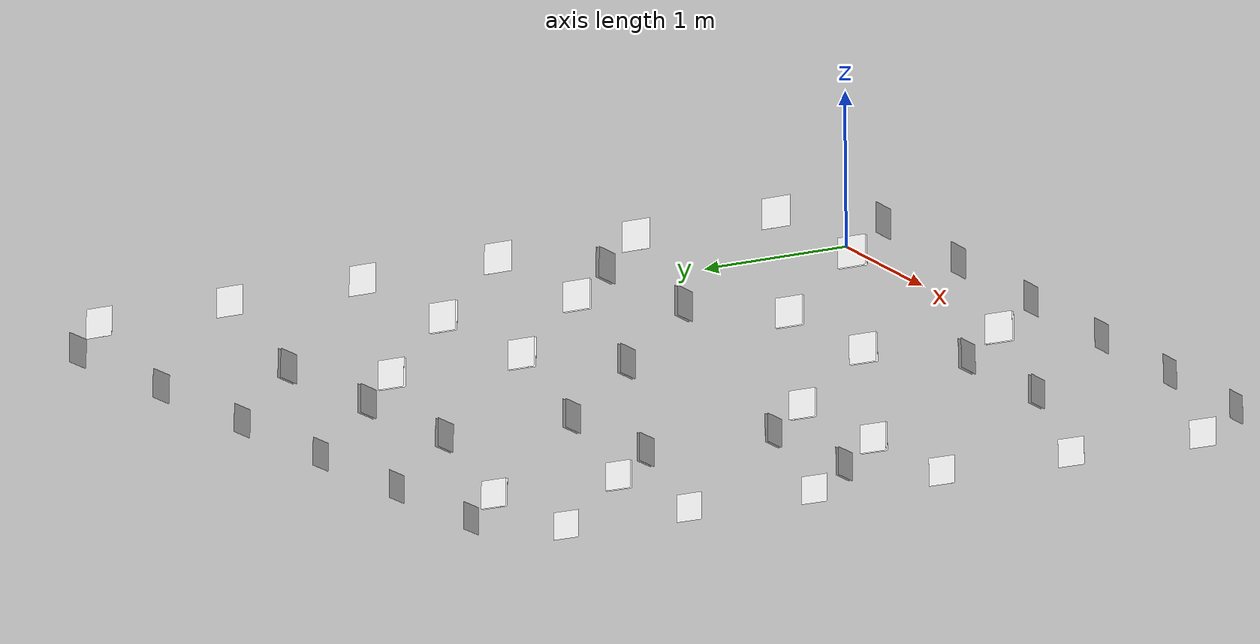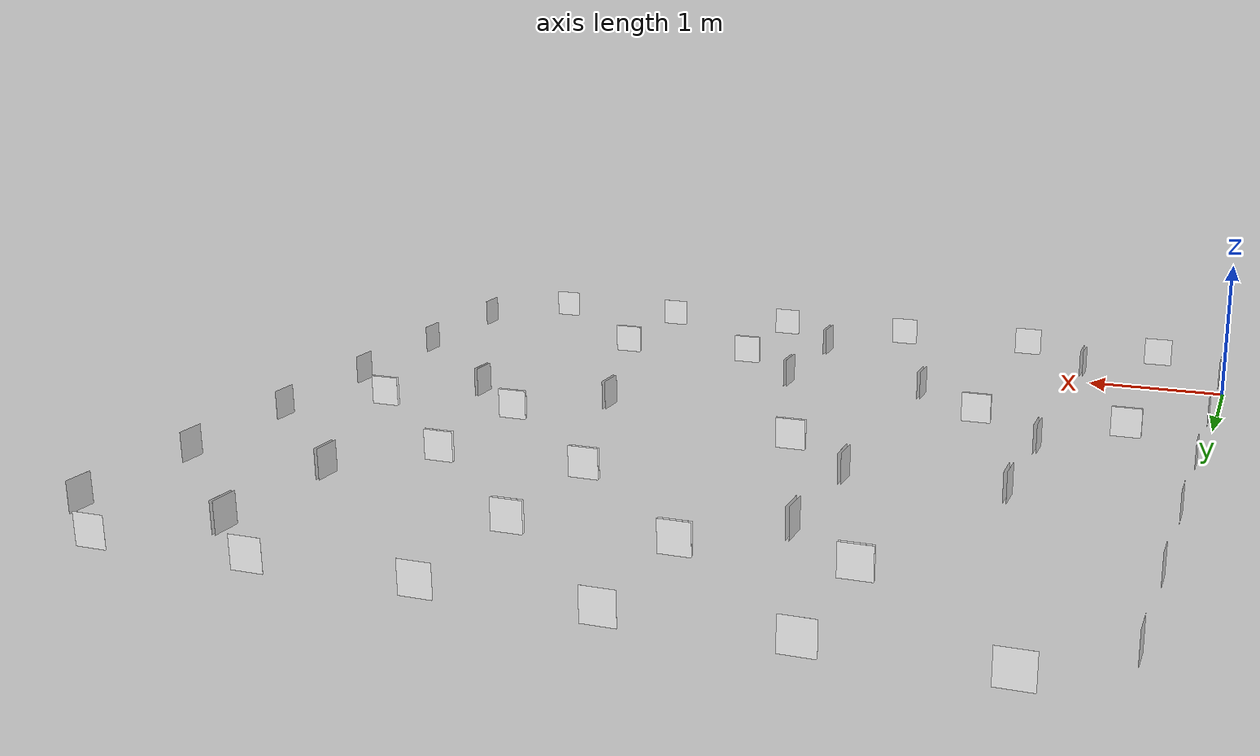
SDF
<?xml version="1.0" ?>
<sdf version="1.5">

 <model name="tag36h11_maze_3">
    <static>true</static>
    <link name='tags'>

     <collision name='collision'>
        <geometry>
          <plane>
            <normal>1 0 0</normal>
            <size>2 2</size>
          </plane>
        </geometry>
        <surface>
          <friction>
            <ode>
              <mu>0.2</mu>
              <mu2>.2</mu2>
            </ode>
          </friction>
        </surface>
     </collision>

      <visual name='tag36_11_00000'>
        <pose>0.5 0.011 0.3 1.5708 0 3.14159</pose>
        <cast_shadows>false</cast_shadows>
        <geometry>
          <plane>
            <normal>0 0 1</normal>
            <size>.2 .2</size>
          </plane>
        </geometry>
        <material>
          <ambient>0.85 0.85 0.85 1</ambient>
          <diffuse>0.85 0.85 0.85 1</diffuse>
          <specular>0.1 0.1 0.1 1</specular>
        </material>
      </visual>

      <visual name='tag36_11_00001'>
        <pose>1.5 0.011 0.3 1.5708 0 3.14159</pose>
        <cast_shadows>false</cast_shadows>
        <geometry>
          <plane>
            <normal>0 0 1</normal>
            <size>.2 .2</size>
          </plane>
        </geometry>
        <material>
          <ambient>0.85 0.85 0.85 1</ambient>
          <diffuse>0.85 0.85 0.85 1</diffuse>
          <specular>0.1 0.1 0.1 1</specular>
        </material>
      </visual>

      <visual name='tag36_11_00002'>
        <pose>2.5 0.011 0.3 1.5708 0 3.14159</pose>
        <cast_shadows>false</cast_shadows>
        <geometry>
          <plane>
            <normal>0 0 1</normal>
            <size>.2 .2</size>
          </plane>
        </geometry>
        <material>
          <ambient>0.85 0.85 0.85 1</ambient>
          <diffuse>0.85 0.85 0.85 1</diffuse>
          <specular>0.1 0.1 0.1 1</specular>
        </material>
      </visual>

      <visual name='tag36_11_00003'>
        <pose>3.5 0.011 0.3 1.5708 0 3.14159</pose>
        <cast_shadows>false</cast_shadows>
        <geometry>
          <plane>
            <normal>0 0 1</normal>
            <size>.2 .2</size>
          </plane>
        </geometry>
        <material>
          <ambient>0.85 0.85 0.85 1</ambient>
          <diffuse>0.85 0.85 0.85 1</diffuse>
          <specular>0.1 0.1 0.1 1</specular>
        </material>
      </visual>

      <visual name='tag36_11_00004'>
        <pose>4.5 0.011 0.3 1.5708 0 3.14159</pose>
        <cast_shadows>false</cast_shadows>
        <geometry>
          <plane>
            <normal>0 0 1</normal>
            <size>.2 .2</size>
          </plane>
        </geometry>
        <material>
          <ambient>0.85 0.85 0.85 1</ambient>
          <diffuse>0.85 0.85 0.85 1</diffuse>
          <specular>0.1 0.1 0.1 1</specular>
        </material>
      </visual>

      <visual name='tag36_11_00005'>
        <pose>5.5 0.011 0.3 1.5708 0 3.14159</pose>
        <cast_shadows>false</cast_shadows>
        <geometry>
          <plane>
            <normal>0 0 1</normal>
            <size>.2 .2</size>
          </plane>
        </geometry>
        <material>
          <ambient>0.85 0.85 0.85 1</ambient>
          <diffuse>0.85 0.85 0.85 1</diffuse>
          <specular>0.1 0.1 0.1 1</specular>
        </material>
      </visual>

      <visual name='tag36_11_00016'>
        <pose>3.5 1.011 0.3 1.5708 0 3.14159</pose>
        <cast_shadows>false</cast_shadows>
        <geometry>
          <plane>
            <normal>0 0 1</normal>
            <size>.2 .2</size>
          </plane>
        </geometry>
        <material>
          <ambient>0.85 0.85 0.85 1</ambient>
          <diffuse>0.85 0.85 0.85 1</diffuse>
          <specular>0.1 0.1 0.1 1</specular>
        </material>
      </visual>

      <visual name='tag36_11_00017'>
        <pose>3.5 0.989 0.3 1.5708 0 0</pose>
        <cast_shadows>false</cast_shadows>
        <geometry>
          <plane>
            <normal>0 0 1</normal>
            <size>.2 .2</size>
          </plane>
        </geometry>
        <material>
          <ambient>0.85 0.85 0.85 1</ambient>
          <diffuse>0.85 0.85 0.85 1</diffuse>
          <specular>0.1 0.1 0.1 1</specular>
        </material>
      </visual>

      <visual name='tag36_11_00018'>
        <pose>4.5 1.011 0.3 1.5708 0 3.14159</pose>
        <cast_shadows>false</cast_shadows>
        <geometry>
          <plane>
            <normal>0 0 1</normal>
            <size>.2 .2</size>
          </plane>
        </geometry>
        <material>
          <ambient>0.85 0.85 0.85 1</ambient>
          <diffuse>0.85 0.85 0.85 1</diffuse>
          <specular>0.1 0.1 0.1 1</specular>
        </material>
      </visual>

      <visual name='tag36_11_00019'>
        <pose>4.5 0.989 0.3 1.5708 0 0</pose>
        <cast_shadows>false</cast_shadows>
        <geometry>
          <plane>
            <normal>0 0 1</normal>
            <size>.2 .2</size>
          </plane>
        </geometry>
        <material>
          <ambient>0.85 0.85 0.85 1</ambient>
          <diffuse>0.85 0.85 0.85 1</diffuse>
          <specular>0.1 0.1 0.1 1</specular>
        </material>
      </visual>

      <visual name='tag36_11_00030'>
        <pose>0.5 2.011 0.3 1.5708 0 3.14159</pose>
        <cast_shadows>false</cast_shadows>
        <geometry>
          <plane>
            <normal>0 0 1</normal>
            <size>.2 .2</size>
          </plane>
        </geometry>
        <material>
          <ambient>0.85 0.85 0.85 1</ambient>
          <diffuse>0.85 0.85 0.85 1</diffuse>
          <specular>0.1 0.1 0.1 1</specular>
        </material>
      </visual>

      <visual name='tag36_11_00031'>
        <pose>0.5 1.989 0.3 1.5708 0 0</pose>
        <cast_shadows>false</cast_shadows>
        <geometry>
          <plane>
            <normal>0 0 1</normal>
            <size>.2 .2</size>
          </plane>
        </geometry>
        <material>
          <ambient>0.85 0.85 0.85 1</ambient>
          <diffuse>0.85 0.85 0.85 1</diffuse>
          <specular>0.1 0.1 0.1 1</specular>
        </material>
      </visual>

      <visual name='tag36_11_00032'>
        <pose>1.5 2.011 0.3 1.5708 0 3.14159</pose>
        <cast_shadows>false</cast_shadows>
        <geometry>
          <plane>
            <normal>0 0 1</normal>
            <size>.2 .2</size>
          </plane>
        </geometry>
        <material>
          <ambient>0.85 0.85 0.85 1</ambient>
          <diffuse>0.85 0.85 0.85 1</diffuse>
          <specular>0.1 0.1 0.1 1</specular>
        </material>
      </visual>

      <visual name='tag36_11_00033'>
        <pose>1.5 1.989 0.3 1.5708 0 0</pose>
        <cast_shadows>false</cast_shadows>
        <geometry>
          <plane>
            <normal>0 0 1</normal>
            <size>.2 .2</size>
          </plane>
        </geometry>
        <material>
          <ambient>0.85 0.85 0.85 1</ambient>
          <diffuse>0.85 0.85 0.85 1</diffuse>
          <specular>0.1 0.1 0.1 1</specular>
        </material>
      </visual>

      <visual name='tag36_11_00054'>
        <pose>2.5 3.011 0.3 1.5708 0 3.14159</pose>
        <cast_shadows>false</cast_shadows>
        <geometry>
          <plane>
            <normal>0 0 1</normal>
            <size>.2 .2</size>
          </plane>
        </geometry>
        <material>
          <ambient>0.85 0.85 0.85 1</ambient>
          <diffuse>0.85 0.85 0.85 1</diffuse>
          <specular>0.1 0.1 0.1 1</specular>
        </material>
      </visual>

      <visual name='tag36_11_00055'>
        <pose>2.5 2.989 0.3 1.5708 0 0</pose>
        <cast_shadows>false</cast_shadows>
        <geometry>
          <plane>
            <normal>0 0 1</normal>
            <size>.2 .2</size>
          </plane>
        </geometry>
        <material>
          <ambient>0.85 0.85 0.85 1</ambient>
          <diffuse>0.85 0.85 0.85 1</diffuse>
          <specular>0.1 0.1 0.1 1</specular>
        </material>
      </visual>

      <visual name='tag36_11_00058'>
        <pose>4.5 3.011 0.3 1.5708 0 3.14159</pose>
        <cast_shadows>false</cast_shadows>
        <geometry>
          <plane>
            <normal>0 0 1</normal>
            <size>.2 .2</size>
          </plane>
        </geometry>
        <material>
          <ambient>0.85 0.85 0.85 1</ambient>
          <diffuse>0.85 0.85 0.85 1</diffuse>
          <specular>0.1 0.1 0.1 1</specular>
        </material>
      </visual>

      <visual name='tag36_11_00059'>
        <pose>4.5 2.989 0.3 1.5708 0 0</pose>
        <cast_shadows>false</cast_shadows>
        <geometry>
          <plane>
            <normal>0 0 1</normal>
            <size>.2 .2</size>
          </plane>
        </geometry>
        <material>
          <ambient>0.85 0.85 0.85 1</ambient>
          <diffuse>0.85 0.85 0.85 1</diffuse>
          <specular>0.1 0.1 0.1 1</specular>
        </material>
      </visual>

      <visual name='tag36_11_00060'>
        <pose>5.5 3.011 0.3 1.5708 0 3.14159</pose>
        <cast_shadows>false</cast_shadows>
        <geometry>
          <plane>
            <normal>0 0 1</normal>
            <size>.2 .2</size>
          </plane>
        </geometry>
        <material>
          <ambient>0.85 0.85 0.85 1</ambient>
          <diffuse>0.85 0.85 0.85 1</diffuse>
          <specular>0.1 0.1 0.1 1</specular>
        </material>
      </visual>

      <visual name='tag36_11_00061'>
        <pose>5.5 2.989 0.3 1.5708 0 0</pose>
        <cast_shadows>false</cast_shadows>
        <geometry>
          <plane>
            <normal>0 0 1</normal>
            <size>.2 .2</size>
          </plane>
        </geometry>
        <material>
          <ambient>0.85 0.85 0.85 1</ambient>
          <diffuse>0.85 0.85 0.85 1</diffuse>
          <specular>0.1 0.1 0.1 1</specular>
        </material>
      </visual>

      <visual name='tag36_11_00076'>
        <pose>3.5 4.011 0.3 1.5708 0 3.14159</pose>
        <cast_shadows>false</cast_shadows>
        <geometry>
          <plane>
            <normal>0 0 1</normal>
            <size>.2 .2</size>
          </plane>
        </geometry>
        <material>
          <ambient>0.85 0.85 0.85 1</ambient>
          <diffuse>0.85 0.85 0.85 1</diffuse>
          <specular>0.1 0.1 0.1 1</specular>
        </material>
      </visual>

      <visual name='tag36_11_00077'>
        <pose>3.5 3.989 0.3 1.5708 0 0</pose>
        <cast_shadows>false</cast_shadows>
        <geometry>
          <plane>
            <normal>0 0 1</normal>
            <size>.2 .2</size>
          </plane>
        </geometry>
        <material>
          <ambient>0.85 0.85 0.85 1</ambient>
          <diffuse>0.85 0.85 0.85 1</diffuse>
          <specular>0.1 0.1 0.1 1</specular>
        </material>
      </visual>

      <visual name='tag36_11_00078'>
        <pose>4.5 4.011 0.3 1.5708 0 3.14159</pose>
        <cast_shadows>false</cast_shadows>
        <geometry>
          <plane>
            <normal>0 0 1</normal>
            <size>.2 .2</size>
          </plane>
        </geometry>
        <material>
          <ambient>0.85 0.85 0.85 1</ambient>
          <diffuse>0.85 0.85 0.85 1</diffuse>
          <specular>0.1 0.1 0.1 1</specular>
        </material>
      </visual>

      <visual name='tag36_11_00079'>
        <pose>4.5 3.989 0.3 1.5708 0 0</pose>
        <cast_shadows>false</cast_shadows>
        <geometry>
          <plane>
            <normal>0 0 1</normal>
            <size>.2 .2</size>
          </plane>
        </geometry>
        <material>
          <ambient>0.85 0.85 0.85 1</ambient>
          <diffuse>0.85 0.85 0.85 1</diffuse>
          <specular>0.1 0.1 0.1 1</specular>
        </material>
      </visual>

      <visual name='tag36_11_00092'>
        <pose>1.5 5.011 0.3 1.5708 0 3.14159</pose>
        <cast_shadows>false</cast_shadows>
        <geometry>
          <plane>
            <normal>0 0 1</normal>
            <size>.2 .2</size>
          </plane>
        </geometry>
        <material>
          <ambient>0.85 0.85 0.85 1</ambient>
          <diffuse>0.85 0.85 0.85 1</diffuse>
          <specular>0.1 0.1 0.1 1</specular>
        </material>
      </visual>

      <visual name='tag36_11_00093'>
        <pose>1.5 4.989 0.3 1.5708 0 0</pose>
        <cast_shadows>false</cast_shadows>
        <geometry>
          <plane>
            <normal>0 0 1</normal>
            <size>.2 .2</size>
          </plane>
        </geometry>
        <material>
          <ambient>0.85 0.85 0.85 1</ambient>
          <diffuse>0.85 0.85 0.85 1</diffuse>
          <specular>0.1 0.1 0.1 1</specular>
        </material>
      </visual>

      <visual name='tag36_11_00094'>
        <pose>2.5 5.011 0.3 1.5708 0 3.14159</pose>
        <cast_shadows>false</cast_shadows>
        <geometry>
          <plane>
            <normal>0 0 1</normal>
            <size>.2 .2</size>
          </plane>
        </geometry>
        <material>
          <ambient>0.85 0.85 0.85 1</ambient>
          <diffuse>0.85 0.85 0.85 1</diffuse>
          <specular>0.1 0.1 0.1 1</specular>
        </material>
      </visual>

      <visual name='tag36_11_00095'>
        <pose>2.5 4.989 0.3 1.5708 0 0</pose>
        <cast_shadows>false</cast_shadows>
        <geometry>
          <plane>
            <normal>0 0 1</normal>
            <size>.2 .2</size>
          </plane>
        </geometry>
        <material>
          <ambient>0.85 0.85 0.85 1</ambient>
          <diffuse>0.85 0.85 0.85 1</diffuse>
          <specular>0.1 0.1 0.1 1</specular>
        </material>
      </visual>

      <visual name='tag36_11_00096'>
        <pose>3.5 5.011 0.3 1.5708 0 3.14159</pose>
        <cast_shadows>false</cast_shadows>
        <geometry>
          <plane>
            <normal>0 0 1</normal>
            <size>.2 .2</size>
          </plane>
        </geometry>
        <material>
          <ambient>0.85 0.85 0.85 1</ambient>
          <diffuse>0.85 0.85 0.85 1</diffuse>
          <specular>0.1 0.1 0.1 1</specular>
        </material>
      </visual>

      <visual name='tag36_11_00097'>
        <pose>3.5 4.989 0.3 1.5708 0 0</pose>
        <cast_shadows>false</cast_shadows>
        <geometry>
          <plane>
            <normal>0 0 1</normal>
            <size>.2 .2</size>
          </plane>
        </geometry>
        <material>
          <ambient>0.85 0.85 0.85 1</ambient>
          <diffuse>0.85 0.85 0.85 1</diffuse>
          <specular>0.1 0.1 0.1 1</specular>
        </material>
      </visual>

      <visual name='tag36_11_00111'>
        <pose>0.5 5.989 0.3 1.5708 0 0</pose>
        <cast_shadows>false</cast_shadows>
        <geometry>
          <plane>
            <normal>0 0 1</normal>
            <size>.2 .2</size>
          </plane>
        </geometry>
        <material>
          <ambient>0.85 0.85 0.85 1</ambient>
          <diffuse>0.85 0.85 0.85 1</diffuse>
          <specular>0.1 0.1 0.1 1</specular>
        </material>
      </visual>

      <visual name='tag36_11_00113'>
        <pose>1.5 5.989 0.3 1.5708 0 0</pose>
        <cast_shadows>false</cast_shadows>
        <geometry>
          <plane>
            <normal>0 0 1</normal>
            <size>.2 .2</size>
          </plane>
        </geometry>
        <material>
          <ambient>0.85 0.85 0.85 1</ambient>
          <diffuse>0.85 0.85 0.85 1</diffuse>
          <specular>0.1 0.1 0.1 1</specular>
        </material>
      </visual>

      <visual name='tag36_11_00115'>
        <pose>2.5 5.989 0.3 1.5708 0 0</pose>
        <cast_shadows>false</cast_shadows>
        <geometry>
          <plane>
            <normal>0 0 1</normal>
            <size>.2 .2</size>
          </plane>
        </geometry>
        <material>
          <ambient>0.85 0.85 0.85 1</ambient>
          <diffuse>0.85 0.85 0.85 1</diffuse>
          <specular>0.1 0.1 0.1 1</specular>
        </material>
      </visual>

      <visual name='tag36_11_00117'>
        <pose>3.5 5.989 0.3 1.5708 0 0</pose>
        <cast_shadows>false</cast_shadows>
        <geometry>
          <plane>
            <normal>0 0 1</normal>
            <size>.2 .2</size>
          </plane>
        </geometry>
        <material>
          <ambient>0.85 0.85 0.85 1</ambient>
          <diffuse>0.85 0.85 0.85 1</diffuse>
          <specular>0.1 0.1 0.1 1</specular>
        </material>
      </visual>

      <visual name='tag36_11_00119'>
        <pose>4.5 5.989 0.3 1.5708 0 0</pose>
        <cast_shadows>false</cast_shadows>
        <geometry>
          <plane>
            <normal>0 0 1</normal>
            <size>.2 .2</size>
          </plane>
        </geometry>
        <material>
          <ambient>0.85 0.85 0.85 1</ambient>
          <diffuse>0.85 0.85 0.85 1</diffuse>
          <specular>0.1 0.1 0.1 1</specular>
        </material>
      </visual>

      <visual name='tag36_11_00121'>
        <pose>5.5 5.989 0.3 1.5708 0 0</pose>
        <cast_shadows>false</cast_shadows>
        <geometry>
          <plane>
            <normal>0 0 1</normal>
            <size>.2 .2</size>
          </plane>
        </geometry>
        <material>
          <ambient>0.85 0.85 0.85 1</ambient>
          <diffuse>0.85 0.85 0.85 1</diffuse>
          <specular>0.1 0.1 0.1 1</specular>
        </material>
      </visual>

      <visual name='tag36_11_00300'>
        <pose>0.011 0.5 0.3 1.5708 0 1.5708</pose>
        <cast_shadows>false</cast_shadows>
        <geometry>
          <plane>
            <normal>0 0 1</normal>
            <size>.2 .2</size>
          </plane>
        </geometry>
        <material>
          <ambient>0.85 0.85 0.85 1</ambient>
          <diffuse>0.85 0.85 0.85 1</diffuse>
          <specular>0.1 0.1 0.1 1</specular>
        </material>
      </visual>

      <visual name='tag36_11_00301'>
        <pose>0.011 1.5 0.3 1.5708 0 1.5708</pose>
        <cast_shadows>false</cast_shadows>
        <geometry>
          <plane>
            <normal>0 0 1</normal>
            <size>.2 .2</size>
          </plane>
        </geometry>
        <material>
          <ambient>0.85 0.85 0.85 1</ambient>
          <diffuse>0.85 0.85 0.85 1</diffuse>
          <specular>0.1 0.1 0.1 1</specular>
        </material>
      </visual>

      <visual name='tag36_11_00302'>
        <pose>0.011 2.5 0.3 1.5708 0 1.5708</pose>
        <cast_shadows>false</cast_shadows>
        <geometry>
          <plane>
            <normal>0 0 1</normal>
            <size>.2 .2</size>
          </plane>
        </geometry>
        <material>
          <ambient>0.85 0.85 0.85 1</ambient>
          <diffuse>0.85 0.85 0.85 1</diffuse>
          <specular>0.1 0.1 0.1 1</specular>
        </material>
      </visual>

      <visual name='tag36_11_00303'>
        <pose>0.011 3.5 0.3 1.5708 0 1.5708</pose>
        <cast_shadows>false</cast_shadows>
        <geometry>
          <plane>
            <normal>0 0 1</normal>
            <size>.2 .2</size>
          </plane>
        </geometry>
        <material>
          <ambient>0.85 0.85 0.85 1</ambient>
          <diffuse>0.85 0.85 0.85 1</diffuse>
          <specular>0.1 0.1 0.1 1</specular>
        </material>
      </visual>

      <visual name='tag36_11_00304'>
        <pose>0.011 4.5 0.3 1.5708 0 1.5708</pose>
        <cast_shadows>false</cast_shadows>
        <geometry>
          <plane>
            <normal>0 0 1</normal>
            <size>.2 .2</size>
          </plane>
        </geometry>
        <material>
          <ambient>0.85 0.85 0.85 1</ambient>
          <diffuse>0.85 0.85 0.85 1</diffuse>
          <specular>0.1 0.1 0.1 1</specular>
        </material>
      </visual>

      <visual name='tag36_11_00305'>
        <pose>0.011 5.5 0.3 1.5708 0 1.5708</pose>
        <cast_shadows>false</cast_shadows>
        <geometry>
          <plane>
            <normal>0 0 1</normal>
            <size>.2 .2</size>
          </plane>
        </geometry>
        <material>
          <ambient>0.85 0.85 0.85 1</ambient>
          <diffuse>0.85 0.85 0.85 1</diffuse>
          <specular>0.1 0.1 0.1 1</specular>
        </material>
      </visual>

      <visual name='tag36_11_00310'>
        <pose>1.011 0.5 0.3 1.5708 0 1.5708</pose>
        <cast_shadows>false</cast_shadows>
        <geometry>
          <plane>
            <normal>0 0 1</normal>
            <size>.2 .2</size>
          </plane>
        </geometry>
        <material>
          <ambient>0.85 0.85 0.85 1</ambient>
          <diffuse>0.85 0.85 0.85 1</diffuse>
          <specular>0.1 0.1 0.1 1</specular>
        </material>
      </visual>

      <visual name='tag36_11_00311'>
        <pose>0.989 0.5 0.3 1.5708 0 -1.5708</pose>
        <cast_shadows>false</cast_shadows>
        <geometry>
          <plane>
            <normal>0 0 1</normal>
            <size>.2 .2</size>
          </plane>
        </geometry>
        <material>
          <ambient>0.85 0.85 0.85 1</ambient>
          <diffuse>0.85 0.85 0.85 1</diffuse>
          <specular>0.1 0.1 0.1 1</specular>
        </material>
      </visual>

      <visual name='tag36_11_00314'>
        <pose>1.011 2.5 0.3 1.5708 0 1.5708</pose>
        <cast_shadows>false</cast_shadows>
        <geometry>
          <plane>
            <normal>0 0 1</normal>
            <size>.2 .2</size>
          </plane>
        </geometry>
        <material>
          <ambient>0.85 0.85 0.85 1</ambient>
          <diffuse>0.85 0.85 0.85 1</diffuse>
          <specular>0.1 0.1 0.1 1</specular>
        </material>
      </visual>

      <visual name='tag36_11_00315'>
        <pose>0.989 2.5 0.3 1.5708 0 -1.5708</pose>
        <cast_shadows>false</cast_shadows>
        <geometry>
          <plane>
            <normal>0 0 1</normal>
            <size>.2 .2</size>
          </plane>
        </geometry>
        <material>
          <ambient>0.85 0.85 0.85 1</ambient>
          <diffuse>0.85 0.85 0.85 1</diffuse>
          <specular>0.1 0.1 0.1 1</specular>
        </material>
      </visual>

      <visual name='tag36_11_00316'>
        <pose>1.011 3.5 0.3 1.5708 0 1.5708</pose>
        <cast_shadows>false</cast_shadows>
        <geometry>
          <plane>
            <normal>0 0 1</normal>
            <size>.2 .2</size>
          </plane>
        </geometry>
        <material>
          <ambient>0.85 0.85 0.85 1</ambient>
          <diffuse>0.85 0.85 0.85 1</diffuse>
          <specular>0.1 0.1 0.1 1</specular>
        </material>
      </visual>

      <visual name='tag36_11_00317'>
        <pose>0.989 3.5 0.3 1.5708 0 -1.5708</pose>
        <cast_shadows>false</cast_shadows>
        <geometry>
          <plane>
            <normal>0 0 1</normal>
            <size>.2 .2</size>
          </plane>
        </geometry>
        <material>
          <ambient>0.85 0.85 0.85 1</ambient>
          <diffuse>0.85 0.85 0.85 1</diffuse>
          <specular>0.1 0.1 0.1 1</specular>
        </material>
      </visual>

      <visual name='tag36_11_00332'>
        <pose>2.011 1.5 0.3 1.5708 0 1.5708</pose>
        <cast_shadows>false</cast_shadows>
        <geometry>
          <plane>
            <normal>0 0 1</normal>
            <size>.2 .2</size>
          </plane>
        </geometry>
        <material>
          <ambient>0.85 0.85 0.85 1</ambient>
          <diffuse>0.85 0.85 0.85 1</diffuse>
          <specular>0.1 0.1 0.1 1</specular>
        </material>
      </visual>

      <visual name='tag36_11_00333'>
        <pose>1.989 1.5 0.3 1.5708 0 -1.5708</pose>
        <cast_shadows>false</cast_shadows>
        <geometry>
          <plane>
            <normal>0 0 1</normal>
            <size>.2 .2</size>
          </plane>
        </geometry>
        <material>
          <ambient>0.85 0.85 0.85 1</ambient>
          <diffuse>0.85 0.85 0.85 1</diffuse>
          <specular>0.1 0.1 0.1 1</specular>
        </material>
      </visual>

      <visual name='tag36_11_00336'>
        <pose>2.011 3.5 0.3 1.5708 0 1.5708</pose>
        <cast_shadows>false</cast_shadows>
        <geometry>
          <plane>
            <normal>0 0 1</normal>
            <size>.2 .2</size>
          </plane>
        </geometry>
        <material>
          <ambient>0.85 0.85 0.85 1</ambient>
          <diffuse>0.85 0.85 0.85 1</diffuse>
          <specular>0.1 0.1 0.1 1</specular>
        </material>
      </visual>

      <visual name='tag36_11_00337'>
        <pose>1.989 3.5 0.3 1.5708 0 -1.5708</pose>
        <cast_shadows>false</cast_shadows>
        <geometry>
          <plane>
            <normal>0 0 1</normal>
            <size>.2 .2</size>
          </plane>
        </geometry>
        <material>
          <ambient>0.85 0.85 0.85 1</ambient>
          <diffuse>0.85 0.85 0.85 1</diffuse>
          <specular>0.1 0.1 0.1 1</specular>
        </material>
      </visual>

      <visual name='tag36_11_00338'>
        <pose>2.011 4.5 0.3 1.5708 0 1.5708</pose>
        <cast_shadows>false</cast_shadows>
        <geometry>
          <plane>
            <normal>0 0 1</normal>
            <size>.2 .2</size>
          </plane>
        </geometry>
        <material>
          <ambient>0.85 0.85 0.85 1</ambient>
          <diffuse>0.85 0.85 0.85 1</diffuse>
          <specular>0.1 0.1 0.1 1</specular>
        </material>
      </visual>

      <visual name='tag36_11_00339'>
        <pose>1.989 4.5 0.3 1.5708 0 -1.5708</pose>
        <cast_shadows>false</cast_shadows>
        <geometry>
          <plane>
            <normal>0 0 1</normal>
            <size>.2 .2</size>
          </plane>
        </geometry>
        <material>
          <ambient>0.85 0.85 0.85 1</ambient>
          <diffuse>0.85 0.85 0.85 1</diffuse>
          <specular>0.1 0.1 0.1 1</specular>
        </material>
      </visual>

      <visual name='tag36_11_00350'>
        <pose>3.011 0.5 0.3 1.5708 0 1.5708</pose>
        <cast_shadows>false</cast_shadows>
        <geometry>
          <plane>
            <normal>0 0 1</normal>
            <size>.2 .2</size>
          </plane>
        </geometry>
        <material>
          <ambient>0.85 0.85 0.85 1</ambient>
          <diffuse>0.85 0.85 0.85 1</diffuse>
          <specular>0.1 0.1 0.1 1</specular>
        </material>
      </visual>

      <visual name='tag36_11_00351'>
        <pose>2.989 0.5 0.3 1.5708 0 -1.5708</pose>
        <cast_shadows>false</cast_shadows>
        <geometry>
          <plane>
            <normal>0 0 1</normal>
            <size>.2 .2</size>
          </plane>
        </geometry>
        <material>
          <ambient>0.85 0.85 0.85 1</ambient>
          <diffuse>0.85 0.85 0.85 1</diffuse>
          <specular>0.1 0.1 0.1 1</specular>
        </material>
      </visual>

      <visual name='tag36_11_00352'>
        <pose>3.011 1.5 0.3 1.5708 0 1.5708</pose>
        <cast_shadows>false</cast_shadows>
        <geometry>
          <plane>
            <normal>0 0 1</normal>
            <size>.2 .2</size>
          </plane>
        </geometry>
        <material>
          <ambient>0.85 0.85 0.85 1</ambient>
          <diffuse>0.85 0.85 0.85 1</diffuse>
          <specular>0.1 0.1 0.1 1</specular>
        </material>
      </visual>

      <visual name='tag36_11_00353'>
        <pose>2.989 1.5 0.3 1.5708 0 -1.5708</pose>
        <cast_shadows>false</cast_shadows>
        <geometry>
          <plane>
            <normal>0 0 1</normal>
            <size>.2 .2</size>
          </plane>
        </geometry>
        <material>
          <ambient>0.85 0.85 0.85 1</ambient>
          <diffuse>0.85 0.85 0.85 1</diffuse>
          <specular>0.1 0.1 0.1 1</specular>
        </material>
      </visual>

      <visual name='tag36_11_00374'>
        <pose>4.011 2.5 0.3 1.5708 0 1.5708</pose>
        <cast_shadows>false</cast_shadows>
        <geometry>
          <plane>
            <normal>0 0 1</normal>
            <size>.2 .2</size>
          </plane>
        </geometry>
        <material>
          <ambient>0.85 0.85 0.85 1</ambient>
          <diffuse>0.85 0.85 0.85 1</diffuse>
          <specular>0.1 0.1 0.1 1</specular>
        </material>
      </visual>

      <visual name='tag36_11_00375'>
        <pose>3.989 2.5 0.3 1.5708 0 -1.5708</pose>
        <cast_shadows>false</cast_shadows>
        <geometry>
          <plane>
            <normal>0 0 1</normal>
            <size>.2 .2</size>
          </plane>
        </geometry>
        <material>
          <ambient>0.85 0.85 0.85 1</ambient>
          <diffuse>0.85 0.85 0.85 1</diffuse>
          <specular>0.1 0.1 0.1 1</specular>
        </material>
      </visual>

      <visual name='tag36_11_00394'>
        <pose>5.011 2.5 0.3 1.5708 0 1.5708</pose>
        <cast_shadows>false</cast_shadows>
        <geometry>
          <plane>
            <normal>0 0 1</normal>
            <size>.2 .2</size>
          </plane>
        </geometry>
        <material>
          <ambient>0.85 0.85 0.85 1</ambient>
          <diffuse>0.85 0.85 0.85 1</diffuse>
          <specular>0.1 0.1 0.1 1</specular>
        </material>
      </visual>

      <visual name='tag36_11_00395'>
        <pose>4.989 2.5 0.3 1.5708 0 -1.5708</pose>
        <cast_shadows>false</cast_shadows>
        <geometry>
          <plane>
            <normal>0 0 1</normal>
            <size>.2 .2</size>
          </plane>
        </geometry>
        <material>
          <ambient>0.85 0.85 0.85 1</ambient>
          <diffuse>0.85 0.85 0.85 1</diffuse>
          <specular>0.1 0.1 0.1 1</specular>
        </material>
      </visual>

      <visual name='tag36_11_00398'>
        <pose>5.011 4.5 0.3 1.5708 0 1.5708</pose>
        <cast_shadows>false</cast_shadows>
        <geometry>
          <plane>
            <normal>0 0 1</normal>
            <size>.2 .2</size>
          </plane>
        </geometry>
        <material>
          <ambient>0.85 0.85 0.85 1</ambient>
          <diffuse>0.85 0.85 0.85 1</diffuse>
          <specular>0.1 0.1 0.1 1</specular>
        </material>
      </visual>

      <visual name='tag36_11_00399'>
        <pose>4.989 4.5 0.3 1.5708 0 -1.5708</pose>
        <cast_shadows>false</cast_shadows>
        <geometry>
          <plane>
            <normal>0 0 1</normal>
            <size>.2 .2</size>
          </plane>
        </geometry>
        <material>
          <ambient>0.85 0.85 0.85 1</ambient>
          <diffuse>0.85 0.85 0.85 1</diffuse>
          <specular>0.1 0.1 0.1 1</specular>
        </material>
      </visual>

      <visual name='tag36_11_00400'>
        <pose>5.011 5.5 0.3 1.5708 0 1.5708</pose>
        <cast_shadows>false</cast_shadows>
        <geometry>
          <plane>
            <normal>0 0 1</normal>
            <size>.2 .2</size>
          </plane>
        </geometry>
        <material>
          <ambient>0.85 0.85 0.85 1</ambient>
          <diffuse>0.85 0.85 0.85 1</diffuse>
          <specular>0.1 0.1 0.1 1</specular>
        </material>
      </visual>

      <visual name='tag36_11_00401'>
        <pose>4.989 5.5 0.3 1.5708 0 -1.5708</pose>
        <cast_shadows>false</cast_shadows>
        <geometry>
          <plane>
            <normal>0 0 1</normal>
            <size>.2 .2</size>
          </plane>
        </geometry>
        <material>
          <ambient>0.85 0.85 0.85 1</ambient>
          <diffuse>0.85 0.85 0.85 1</diffuse>
          <specular>0.1 0.1 0.1 1</specular>
        </material>
      </visual>

      <visual name='tag36_11_00411'>
        <pose>5.989 0.5 0.3 1.5708 0 -1.5708</pose>
        <cast_shadows>false</cast_shadows>
        <geometry>
          <plane>
            <normal>0 0 1</normal>
            <size>.2 .2</size>
          </plane>
        </geometry>
        <material>
          <ambient>0.85 0.85 0.85 1</ambient>
          <diffuse>0.85 0.85 0.85 1</diffuse>
          <specular>0.1 0.1 0.1 1</specular>
        </material>
      </visual>

      <visual name='tag36_11_00413'>
        <pose>5.989 1.5 0.3 1.5708 0 -1.5708</pose>
        <cast_shadows>false</cast_shadows>
        <geometry>
          <plane>
            <normal>0 0 1</normal>
            <size>.2 .2</size>
          </plane>
        </geometry>
        <material>
          <ambient>0.85 0.85 0.85 1</ambient>
          <diffuse>0.85 0.85 0.85 1</diffuse>
          <specular>0.1 0.1 0.1 1</specular>
        </material>
      </visual>

      <visual name='tag36_11_00415'>
        <pose>5.989 2.5 0.3 1.5708 0 -1.5708</pose>
        <cast_shadows>false</cast_shadows>
        <geometry>
          <plane>
            <normal>0 0 1</normal>
            <size>.2 .2</size>
          </plane>
        </geometry>
        <material>
          <ambient>0.85 0.85 0.85 1</ambient>
          <diffuse>0.85 0.85 0.85 1</diffuse>
          <specular>0.1 0.1 0.1 1</specular>
        </material>
      </visual>

      <visual name='tag36_11_00417'>
        <pose>5.989 3.5 0.3 1.5708 0 -1.5708</pose>
        <cast_shadows>false</cast_shadows>
        <geometry>
          <plane>
            <normal>0 0 1</normal>
            <size>.2 .2</size>
          </plane>
        </geometry>
        <material>
          <ambient>0.85 0.85 0.85 1</ambient>
          <diffuse>0.85 0.85 0.85 1</diffuse>
          <specular>0.1 0.1 0.1 1</specular>
        </material>
      </visual>

      <visual name='tag36_11_00419'>
        <pose>5.989 4.5 0.3 1.5708 0 -1.5708</pose>
        <cast_shadows>false</cast_shadows>
        <geometry>
          <plane>
            <normal>0 0 1</normal>
            <size>.2 .2</size>
          </plane>
        </geometry>
        <material>
          <ambient>0.85 0.85 0.85 1</ambient>
          <diffuse>0.85 0.85 0.85 1</diffuse>
          <specular>0.1 0.1 0.1 1</specular>
        </material>
      </visual>

      <visual name='tag36_11_00421'>
        <pose>5.989 5.5 0.3 1.5708 0 -1.5708</pose>
        <cast_shadows>false</cast_shadows>
        <geometry>
          <plane>
            <normal>0 0 1</normal>
            <size>.2 .2</size>
          </plane>
        </geometry>
        <material>
          <ambient>0.85 0.85 0.85 1</ambient>
          <diffuse>0.85 0.85 0.85 1</diffuse>
          <specular>0.1 0.1 0.1 1</specular>
        </material>
      </visual>

    </link>
 </model>
</sdf>
